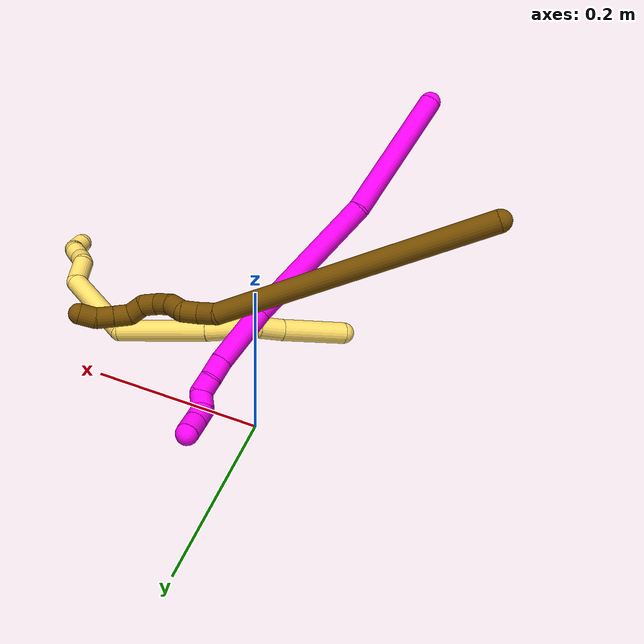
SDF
<sdf version="1.7">
 <world name="default">
  <model name="5">
   <static>0</static>
   <link name="5">
    <collision name="collision-cylinder-e_1_1_4">
     <pose>0.007945 -0.015925 -0.03377 2.70093 0.209661 0.878373</pose>
     <geometry><cylinder><radius>0.0125</radius><length>0.076345</length></cylinder></geometry>
     <surface>
      <friction><ode><mu>1.16</mu><mu2>1.16</mu2><slip1>0</slip1><slip2>0</slip2></ode></friction>
      <contact><ode><kp>1e+06</kp><kd>1</kd><max_vel>0</max_vel><min_depth>0.001</min_depth></ode></contact>
     </surface>
    </collision>
    <visual name="visual-cylinder-e_1_1_4">
     <pose>0.007945 -0.015925 -0.03377 2.70093 0.209661 0.878373</pose>
     <geometry><cylinder><radius>0.0125</radius><length>0.076345</length></cylinder></geometry>
     <material><ambient>1 0.858824 0.4 1</ambient></material>
    </visual>
    <collision name="collision-cylinder-e_2_4_5">
     <pose>0.018229 -0.037213 -0.080101 2.73811 0.169615 0.78785</pose>
     <geometry><cylinder><radius>0.0125</radius><length>0.027714</length></cylinder></geometry>
     <surface>
      <friction><ode><mu>1.16</mu><mu2>1.16</mu2><slip1>0</slip1><slip2>0</slip2></ode></friction>
      <contact><ode><kp>1e+06</kp><kd>1</kd><max_vel>0</max_vel><min_depth>0.001</min_depth></ode></contact>
     </surface>
    </collision>
    <visual name="visual-cylinder-e_2_4_5">
     <pose>0.018229 -0.037213 -0.080101 2.73811 0.169615 0.78785</pose>
     <geometry><cylinder><radius>0.0125</radius><length>0.027714</length></cylinder></geometry>
     <material><ambient>1 0.858824 0.4 1</ambient></material>
    </visual>
    <collision name="collision-cylinder-e_3_5_6">
     <pose>0.041767 -0.046639 -0.115727 2.96722 0.735672 2.69552</pose>
     <geometry><cylinder><radius>0.0125</radius><length>0.063179</length></cylinder></geometry>
     <surface>
      <friction><ode><mu>1.16</mu><mu2>1.16</mu2><slip1>0</slip1><slip2>0</slip2></ode></friction>
      <contact><ode><kp>1e+06</kp><kd>1</kd><max_vel>0</max_vel><min_depth>0.001</min_depth></ode></contact>
     </surface>
    </collision>
    <visual name="visual-cylinder-e_3_5_6">
     <pose>0.041767 -0.046639 -0.115727 2.96722 0.735672 2.69552</pose>
     <geometry><cylinder><radius>0.0125</radius><length>0.063179</length></cylinder></geometry>
     <material><ambient>1 0.858824 0.4 1</ambient></material>
    </visual>
    <collision name="collision-cylinder-e_4_6_7">
     <pose>0.098607 -0.05566 -0.181071 3.02485 0.697034 2.82266</pose>
     <geometry><cylinder><radius>0.0125</radius><length>0.111038</length></cylinder></geometry>
     <surface>
      <friction><ode><mu>1.16</mu><mu2>1.16</mu2><slip1>0</slip1><slip2>0</slip2></ode></friction>
      <contact><ode><kp>1e+06</kp><kd>1</kd><max_vel>0</max_vel><min_depth>0.001</min_depth></ode></contact>
     </surface>
    </collision>
    <visual name="visual-cylinder-e_4_6_7">
     <pose>0.098607 -0.05566 -0.181071 3.02485 0.697034 2.82266</pose>
     <geometry><cylinder><radius>0.0125</radius><length>0.111038</length></cylinder></geometry>
     <material><ambient>1 0.858824 0.4 1</ambient></material>
    </visual>
    <collision name="collision-cylinder-e_5_7_8">
     <pose>0.152386 -0.030889 -0.260731 -2.4697 0.362952 -0.967674</pose>
     <geometry><cylinder><radius>0.0125</radius><length>0.102181</length></cylinder></geometry>
     <surface>
      <friction><ode><mu>1.16</mu><mu2>1.16</mu2><slip1>0</slip1><slip2>0</slip2></ode></friction>
      <contact><ode><kp>1e+06</kp><kd>1</kd><max_vel>0</max_vel><min_depth>0.001</min_depth></ode></contact>
     </surface>
    </collision>
    <visual name="visual-cylinder-e_5_7_8">
     <pose>0.152386 -0.030889 -0.260731 -2.4697 0.362952 -0.967674</pose>
     <geometry><cylinder><radius>0.0125</radius><length>0.102181</length></cylinder></geometry>
     <material><ambient>1 0.858824 0.4 1</ambient></material>
    </visual>
    <collision name="collision-cylinder-e_6_8_9">
     <pose>0.172259 0.016657 -0.301109 -1.7375 0.095738 -0.113158</pose>
     <geometry><cylinder><radius>0.0125</radius><length>0.036298</length></cylinder></geometry>
     <surface>
      <friction><ode><mu>1.16</mu><mu2>1.16</mu2><slip1>0</slip1><slip2>0</slip2></ode></friction>
      <contact><ode><kp>1e+06</kp><kd>1</kd><max_vel>0</max_vel><min_depth>0.001</min_depth></ode></contact>
     </surface>
    </collision>
    <visual name="visual-cylinder-e_6_8_9">
     <pose>0.172259 0.016657 -0.301109 -1.7375 0.095738 -0.113158</pose>
     <geometry><cylinder><radius>0.0125</radius><length>0.036298</length></cylinder></geometry>
     <material><ambient>1 0.858824 0.4 1</ambient></material>
    </visual>
    <collision name="collision-cylinder-e_7_9_10">
     <pose>0.180962 0.042813 -0.30764 -1.97151 0.65564 -0.948658</pose>
     <geometry><cylinder><radius>0.0125</radius><length>0.022856</length></cylinder></geometry>
     <surface>
      <friction><ode><mu>1.16</mu><mu2>1.16</mu2><slip1>0</slip1><slip2>0</slip2></ode></friction>
      <contact><ode><kp>1e+06</kp><kd>1</kd><max_vel>0</max_vel><min_depth>0.001</min_depth></ode></contact>
     </surface>
    </collision>
    <visual name="visual-cylinder-e_7_9_10">
     <pose>0.180962 0.042813 -0.30764 -1.97151 0.65564 -0.948658</pose>
     <geometry><cylinder><radius>0.0125</radius><length>0.022856</length></cylinder></geometry>
     <material><ambient>1 0.858824 0.4 1</ambient></material>
    </visual>
    <collision name="collision-cylinder-e_8_10_11">
     <pose>0.19253 0.058041 -0.316994 -2.27246 0.471805 -0.955691</pose>
     <geometry><cylinder><radius>0.0125</radius><length>0.020246</length></cylinder></geometry>
     <surface>
      <friction><ode><mu>1.16</mu><mu2>1.16</mu2><slip1>0</slip1><slip2>0</slip2></ode></friction>
      <contact><ode><kp>1e+06</kp><kd>1</kd><max_vel>0</max_vel><min_depth>0.001</min_depth></ode></contact>
     </surface>
    </collision>
    <visual name="visual-cylinder-e_8_10_11">
     <pose>0.19253 0.058041 -0.316994 -2.27246 0.471805 -0.955691</pose>
     <geometry><cylinder><radius>0.0125</radius><length>0.020246</length></cylinder></geometry>
     <material><ambient>1 0.858824 0.4 1</ambient></material>
    </visual>
    <collision name="collision-cylinder-e_9_11_12">
     <pose>0.20431 0.071812 -0.324088 -1.75373 0.79805 -0.93815</pose>
     <geometry><cylinder><radius>0.0125</radius><length>0.020055</length></cylinder></geometry>
     <surface>
      <friction><ode><mu>1.16</mu><mu2>1.16</mu2><slip1>0</slip1><slip2>0</slip2></ode></friction>
      <contact><ode><kp>1e+06</kp><kd>1</kd><max_vel>0</max_vel><min_depth>0.001</min_depth></ode></contact>
     </surface>
    </collision>
    <visual name="visual-cylinder-e_9_11_12">
     <pose>0.20431 0.071812 -0.324088 -1.75373 0.79805 -0.93815</pose>
     <geometry><cylinder><radius>0.0125</radius><length>0.020055</length></cylinder></geometry>
     <material><ambient>1 0.858824 0.4 1</ambient></material>
    </visual>
    <collision name="collision-cylinder-e_10_12_2">
     <pose>0.212996 0.088397 -0.323239 -1.35542 0.15048 -0.121199</pose>
     <geometry><cylinder><radius>0.0125</radius><length>0.020089</length></cylinder></geometry>
     <surface>
      <friction><ode><mu>1.16</mu><mu2>1.16</mu2><slip1>0</slip1><slip2>0</slip2></ode></friction>
      <contact><ode><kp>1e+06</kp><kd>1</kd><max_vel>0</max_vel><min_depth>0.001</min_depth></ode></contact>
     </surface>
    </collision>
    <visual name="visual-cylinder-e_10_12_2">
     <pose>0.212996 0.088397 -0.323239 -1.35542 0.15048 -0.121199</pose>
     <geometry><cylinder><radius>0.0125</radius><length>0.020089</length></cylinder></geometry>
     <material><ambient>1 0.858824 0.4 1</ambient></material>
    </visual>
    <collision name="collision-sphere-2">
     <pose>0.214501 0.098098 -0.321117 0 -0 0</pose>
     <geometry><sphere><radius>0.0125</radius></sphere></geometry>
     <surface>
      <friction><ode><mu>1.16</mu><mu2>1.16</mu2><slip1>0</slip1><slip2>0</slip2></ode></friction>
      <contact><ode><kp>1e+06</kp><kd>1</kd><max_vel>0</max_vel><min_depth>0.001</min_depth></ode></contact>
     </surface>
    </collision>
    <visual name="visual-sphere-2">
     <pose>0.214501 0.098098 -0.321117 0 -0 0</pose>
     <geometry><sphere><radius>0.0125</radius></sphere></geometry>
     <material><ambient>1 0.858824 0.4 1</ambient></material>
    </visual>
    <collision name="collision-sphere-12">
     <pose>0.21149 0.078695 -0.325362 0 -0 0</pose>
     <geometry><sphere><radius>0.0125</radius></sphere></geometry>
     <surface>
      <friction><ode><mu>1.16</mu><mu2>1.16</mu2><slip1>0</slip1><slip2>0</slip2></ode></friction>
      <contact><ode><kp>1e+06</kp><kd>1</kd><max_vel>0</max_vel><min_depth>0.001</min_depth></ode></contact>
     </surface>
    </collision>
    <visual name="visual-sphere-12">
     <pose>0.21149 0.078695 -0.325362 0 -0 0</pose>
     <geometry><sphere><radius>0.0125</radius></sphere></geometry>
     <material><ambient>1 0.858824 0.4 1</ambient></material>
    </visual>
    <collision name="collision-sphere-11">
     <pose>0.19713 0.064928 -0.322815 0 -0 0</pose>
     <geometry><sphere><radius>0.0125</radius></sphere></geometry>
     <surface>
      <friction><ode><mu>1.16</mu><mu2>1.16</mu2><slip1>0</slip1><slip2>0</slip2></ode></friction>
      <contact><ode><kp>1e+06</kp><kd>1</kd><max_vel>0</max_vel><min_depth>0.001</min_depth></ode></contact>
     </surface>
    </collision>
    <visual name="visual-sphere-11">
     <pose>0.19713 0.064928 -0.322815 0 -0 0</pose>
     <geometry><sphere><radius>0.0125</radius></sphere></geometry>
     <material><ambient>1 0.858824 0.4 1</ambient></material>
    </visual>
    <collision name="collision-sphere-10">
     <pose>0.187929 0.051154 -0.311174 0 -0 0</pose>
     <geometry><sphere><radius>0.0125</radius></sphere></geometry>
     <surface>
      <friction><ode><mu>1.16</mu><mu2>1.16</mu2><slip1>0</slip1><slip2>0</slip2></ode></friction>
      <contact><ode><kp>1e+06</kp><kd>1</kd><max_vel>0</max_vel><min_depth>0.001</min_depth></ode></contact>
     </surface>
    </collision>
    <visual name="visual-sphere-10">
     <pose>0.187929 0.051154 -0.311174 0 -0 0</pose>
     <geometry><sphere><radius>0.0125</radius></sphere></geometry>
     <material><ambient>1 0.858824 0.4 1</ambient></material>
    </visual>
    <collision name="collision-sphere-9">
     <pose>0.173994 0.034472 -0.304107 0 -0 0</pose>
     <geometry><sphere><radius>0.0125</radius></sphere></geometry>
     <surface>
      <friction><ode><mu>1.16</mu><mu2>1.16</mu2><slip1>0</slip1><slip2>0</slip2></ode></friction>
      <contact><ode><kp>1e+06</kp><kd>1</kd><max_vel>0</max_vel><min_depth>0.001</min_depth></ode></contact>
     </surface>
    </collision>
    <visual name="visual-sphere-9">
     <pose>0.173994 0.034472 -0.304107 0 -0 0</pose>
     <geometry><sphere><radius>0.0125</radius></sphere></geometry>
     <material><ambient>1 0.858824 0.4 1</ambient></material>
    </visual>
    <collision name="collision-sphere-4">
     <pose>0.01589 -0.031851 -0.067539 0 -0 0</pose>
     <geometry><sphere><radius>0.0125</radius></sphere></geometry>
     <surface>
      <friction><ode><mu>1.16</mu><mu2>1.16</mu2><slip1>0</slip1><slip2>0</slip2></ode></friction>
      <contact><ode><kp>1e+06</kp><kd>1</kd><max_vel>0</max_vel><min_depth>0.001</min_depth></ode></contact>
     </surface>
    </collision>
    <visual name="visual-sphere-4">
     <pose>0.01589 -0.031851 -0.067539 0 -0 0</pose>
     <geometry><sphere><radius>0.0125</radius></sphere></geometry>
     <material><ambient>1 0.858824 0.4 1</ambient></material>
    </visual>
    <collision name="collision-sphere-1">
     <geometry><sphere><radius>0.0125</radius></sphere></geometry>
     <surface>
      <friction><ode><mu>1.16</mu><mu2>1.16</mu2><slip1>0</slip1><slip2>0</slip2></ode></friction>
      <contact><ode><kp>1e+06</kp><kd>1</kd><max_vel>0</max_vel><min_depth>0.001</min_depth></ode></contact>
     </surface>
    </collision>
    <visual name="visual-sphere-1">
     <geometry><sphere><radius>0.0125</radius></sphere></geometry>
     <material><ambient>1 0.858824 0.4 1</ambient></material>
    </visual>
    <collision name="collision-sphere-8">
     <pose>0.170524 -0.001158 -0.298112 0 -0 0</pose>
     <geometry><sphere><radius>0.0125</radius></sphere></geometry>
     <surface>
      <friction><ode><mu>1.16</mu><mu2>1.16</mu2><slip1>0</slip1><slip2>0</slip2></ode></friction>
      <contact><ode><kp>1e+06</kp><kd>1</kd><max_vel>0</max_vel><min_depth>0.001</min_depth></ode></contact>
     </surface>
    </collision>
    <visual name="visual-sphere-8">
     <pose>0.170524 -0.001158 -0.298112 0 -0 0</pose>
     <geometry><sphere><radius>0.0125</radius></sphere></geometry>
     <material><ambient>1 0.858824 0.4 1</ambient></material>
    </visual>
    <collision name="collision-sphere-5">
     <pose>0.020568 -0.042576 -0.092662 0 -0 0</pose>
     <geometry><sphere><radius>0.0125</radius></sphere></geometry>
     <surface>
      <friction><ode><mu>1.16</mu><mu2>1.16</mu2><slip1>0</slip1><slip2>0</slip2></ode></friction>
      <contact><ode><kp>1e+06</kp><kd>1</kd><max_vel>0</max_vel><min_depth>0.001</min_depth></ode></contact>
     </surface>
    </collision>
    <visual name="visual-sphere-5">
     <pose>0.020568 -0.042576 -0.092662 0 -0 0</pose>
     <geometry><sphere><radius>0.0125</radius></sphere></geometry>
     <material><ambient>1 0.858824 0.4 1</ambient></material>
    </visual>
    <collision name="collision-sphere-6">
     <pose>0.062966 -0.050702 -0.138792 0 -0 0</pose>
     <geometry><sphere><radius>0.0125</radius></sphere></geometry>
     <surface>
      <friction><ode><mu>1.16</mu><mu2>1.16</mu2><slip1>0</slip1><slip2>0</slip2></ode></friction>
      <contact><ode><kp>1e+06</kp><kd>1</kd><max_vel>0</max_vel><min_depth>0.001</min_depth></ode></contact>
     </surface>
    </collision>
    <visual name="visual-sphere-6">
     <pose>0.062966 -0.050702 -0.138792 0 -0 0</pose>
     <geometry><sphere><radius>0.0125</radius></sphere></geometry>
     <material><ambient>1 0.858824 0.4 1</ambient></material>
    </visual>
    <collision name="collision-sphere-7">
     <pose>0.134247 -0.060619 -0.22335 0 -0 0</pose>
     <geometry><sphere><radius>0.0125</radius></sphere></geometry>
     <surface>
      <friction><ode><mu>1.16</mu><mu2>1.16</mu2><slip1>0</slip1><slip2>0</slip2></ode></friction>
      <contact><ode><kp>1e+06</kp><kd>1</kd><max_vel>0</max_vel><min_depth>0.001</min_depth></ode></contact>
     </surface>
    </collision>
    <visual name="visual-sphere-7">
     <pose>0.134247 -0.060619 -0.22335 0 -0 0</pose>
     <geometry><sphere><radius>0.0125</radius></sphere></geometry>
     <material><ambient>1 0.858824 0.4 1</ambient></material>
    </visual>
    <inertial>
     <pose>0.105867 -0.017112 -0.192458 0 -0 0</pose>
     <mass>0.5</mass>
     <inertia><ixx>-7e-06</ixx><ixy>0</ixy><ixz>0</ixz><iyy>9.1e-05</iyy><iyz>0</iyz><izz>-0.000195</izz></inertia>
    </inertial>
   </link>
   <pose>-0.052076 -0.142217 0.038235 3.05528 1.0559 0.054289</pose>
  </model>
  <model name="10">
   <static>0</static>
   <link name="10">
    <collision name="collision-cylinder-e_1_1_4">
     <pose>0.021475 0.066764 -0.038999 -2.09947 0.27091 -0.466266</pose>
     <geometry><cylinder><radius>0.0125</radius><length>0.160493</length></cylinder></geometry>
     <surface>
      <friction><ode><mu>1.16</mu><mu2>1.16</mu2><slip1>0</slip1><slip2>0</slip2></ode></friction>
      <contact><ode><kp>1e+06</kp><kd>1</kd><max_vel>0</max_vel><min_depth>0.001</min_depth></ode></contact>
     </surface>
    </collision>
    <visual name="visual-cylinder-e_1_1_4">
     <pose>0.021475 0.066764 -0.038999 -2.09947 0.27091 -0.466266</pose>
     <geometry><cylinder><radius>0.0125</radius><length>0.160493</length></cylinder></geometry>
     <material><ambient>1 0 0.964706 1</ambient></material>
    </visual>
    <collision name="collision-cylinder-e_2_4_5">
     <pose>0.06341 0.208804 -0.099588 -1.85009 0.255566 -0.337772</pose>
     <geometry><cylinder><radius>0.0125</radius><length>0.16188</length></cylinder></geometry>
     <surface>
      <friction><ode><mu>1.16</mu><mu2>1.16</mu2><slip1>0</slip1><slip2>0</slip2></ode></friction>
      <contact><ode><kp>1e+06</kp><kd>1</kd><max_vel>0</max_vel><min_depth>0.001</min_depth></ode></contact>
     </surface>
    </collision>
    <visual name="visual-cylinder-e_2_4_5">
     <pose>0.06341 0.208804 -0.099588 -1.85009 0.255566 -0.337772</pose>
     <geometry><cylinder><radius>0.0125</radius><length>0.16188</length></cylinder></geometry>
     <material><ambient>1 0 0.964706 1</ambient></material>
    </visual>
    <collision name="collision-cylinder-e_3_5_6">
     <pose>0.088891 0.31451 -0.140754 -2.1425 0.137849 -0.251667</pose>
     <geometry><cylinder><radius>0.0125</radius><length>0.073059</length></cylinder></geometry>
     <surface>
      <friction><ode><mu>1.16</mu><mu2>1.16</mu2><slip1>0</slip1><slip2>0</slip2></ode></friction>
      <contact><ode><kp>1e+06</kp><kd>1</kd><max_vel>0</max_vel><min_depth>0.001</min_depth></ode></contact>
     </surface>
    </collision>
    <visual name="visual-cylinder-e_3_5_6">
     <pose>0.088891 0.31451 -0.140754 -2.1425 0.137849 -0.251667</pose>
     <geometry><cylinder><radius>0.0125</radius><length>0.073059</length></cylinder></geometry>
     <material><ambient>1 0 0.964706 1</ambient></material>
    </visual>
    <collision name="collision-cylinder-e_4_6_7">
     <pose>0.09609 0.353404 -0.167178 -2.25093 0.197522 -0.409359</pose>
     <geometry><cylinder><radius>0.0125</radius><length>0.022208</length></cylinder></geometry>
     <surface>
      <friction><ode><mu>1.16</mu><mu2>1.16</mu2><slip1>0</slip1><slip2>0</slip2></ode></friction>
      <contact><ode><kp>1e+06</kp><kd>1</kd><max_vel>0</max_vel><min_depth>0.001</min_depth></ode></contact>
     </surface>
    </collision>
    <visual name="visual-cylinder-e_4_6_7">
     <pose>0.09609 0.353404 -0.167178 -2.25093 0.197522 -0.409359</pose>
     <geometry><cylinder><radius>0.0125</radius><length>0.022208</length></cylinder></geometry>
     <material><ambient>1 0 0.964706 1</ambient></material>
    </visual>
    <collision name="collision-cylinder-e_5_7_8">
     <pose>0.10137 0.370239 -0.178615 -2.07236 0.314165 -0.522733</pose>
     <geometry><cylinder><radius>0.0125</radius><length>0.020074</length></cylinder></geometry>
     <surface>
      <friction><ode><mu>1.16</mu><mu2>1.16</mu2><slip1>0</slip1><slip2>0</slip2></ode></friction>
      <contact><ode><kp>1e+06</kp><kd>1</kd><max_vel>0</max_vel><min_depth>0.001</min_depth></ode></contact>
     </surface>
    </collision>
    <visual name="visual-cylinder-e_5_7_8">
     <pose>0.10137 0.370239 -0.178615 -2.07236 0.314165 -0.522733</pose>
     <geometry><cylinder><radius>0.0125</radius><length>0.020074</length></cylinder></geometry>
     <material><ambient>1 0 0.964706 1</ambient></material>
    </visual>
    <collision name="collision-cylinder-e_6_8_9">
     <pose>0.108282 0.380794 -0.19226 -2.9048 0.388307 -2.05349</pose>
     <geometry><cylinder><radius>0.0125</radius><length>0.020128</length></cylinder></geometry>
     <surface>
      <friction><ode><mu>1.16</mu><mu2>1.16</mu2><slip1>0</slip1><slip2>0</slip2></ode></friction>
      <contact><ode><kp>1e+06</kp><kd>1</kd><max_vel>0</max_vel><min_depth>0.001</min_depth></ode></contact>
     </surface>
    </collision>
    <visual name="visual-cylinder-e_6_8_9">
     <pose>0.108282 0.380794 -0.19226 -2.9048 0.388307 -2.05349</pose>
     <geometry><cylinder><radius>0.0125</radius><length>0.020128</length></cylinder></geometry>
     <material><ambient>1 0 0.964706 1</ambient></material>
    </visual>
    <collision name="collision-cylinder-e_7_9_10">
     <pose>0.109943 0.388108 -0.21038 -2.6268 -0.203511 0.740062</pose>
     <geometry><cylinder><radius>0.0125</radius><length>0.02127</length></cylinder></geometry>
     <surface>
      <friction><ode><mu>1.16</mu><mu2>1.16</mu2><slip1>0</slip1><slip2>0</slip2></ode></friction>
      <contact><ode><kp>1e+06</kp><kd>1</kd><max_vel>0</max_vel><min_depth>0.001</min_depth></ode></contact>
     </surface>
    </collision>
    <visual name="visual-cylinder-e_7_9_10">
     <pose>0.109943 0.388108 -0.21038 -2.6268 -0.203511 0.740062</pose>
     <geometry><cylinder><radius>0.0125</radius><length>0.02127</length></cylinder></geometry>
     <material><ambient>1 0 0.964706 1</ambient></material>
    </visual>
    <collision name="collision-cylinder-e_8_10_2">
     <pose>0.105374 0.398106 -0.228363 -2.64171 -0.233803 0.86233</pose>
     <geometry><cylinder><radius>0.0125</radius><length>0.020888</length></cylinder></geometry>
     <surface>
      <friction><ode><mu>1.16</mu><mu2>1.16</mu2><slip1>0</slip1><slip2>0</slip2></ode></friction>
      <contact><ode><kp>1e+06</kp><kd>1</kd><max_vel>0</max_vel><min_depth>0.001</min_depth></ode></contact>
     </surface>
    </collision>
    <visual name="visual-cylinder-e_8_10_2">
     <pose>0.105374 0.398106 -0.228363 -2.64171 -0.233803 0.86233</pose>
     <geometry><cylinder><radius>0.0125</radius><length>0.020888</length></cylinder></geometry>
     <material><ambient>1 0 0.964706 1</ambient></material>
    </visual>
    <collision name="collision-sphere-2">
     <pose>0.102955 0.402975 -0.237279 0 -0 0</pose>
     <geometry><sphere><radius>0.0125</radius></sphere></geometry>
     <surface>
      <friction><ode><mu>1.16</mu><mu2>1.16</mu2><slip1>0</slip1><slip2>0</slip2></ode></friction>
      <contact><ode><kp>1e+06</kp><kd>1</kd><max_vel>0</max_vel><min_depth>0.001</min_depth></ode></contact>
     </surface>
    </collision>
    <visual name="visual-sphere-2">
     <pose>0.102955 0.402975 -0.237279 0 -0 0</pose>
     <geometry><sphere><radius>0.0125</radius></sphere></geometry>
     <material><ambient>1 0 0.964706 1</ambient></material>
    </visual>
    <collision name="collision-sphere-10">
     <pose>0.107794 0.393236 -0.219446 0 -0 0</pose>
     <geometry><sphere><radius>0.0125</radius></sphere></geometry>
     <surface>
      <friction><ode><mu>1.16</mu><mu2>1.16</mu2><slip1>0</slip1><slip2>0</slip2></ode></friction>
      <contact><ode><kp>1e+06</kp><kd>1</kd><max_vel>0</max_vel><min_depth>0.001</min_depth></ode></contact>
     </surface>
    </collision>
    <visual name="visual-sphere-10">
     <pose>0.107794 0.393236 -0.219446 0 -0 0</pose>
     <geometry><sphere><radius>0.0125</radius></sphere></geometry>
     <material><ambient>1 0 0.964706 1</ambient></material>
    </visual>
    <collision name="collision-sphere-9">
     <pose>0.112093 0.382979 -0.201314 0 -0 0</pose>
     <geometry><sphere><radius>0.0125</radius></sphere></geometry>
     <surface>
      <friction><ode><mu>1.16</mu><mu2>1.16</mu2><slip1>0</slip1><slip2>0</slip2></ode></friction>
      <contact><ode><kp>1e+06</kp><kd>1</kd><max_vel>0</max_vel><min_depth>0.001</min_depth></ode></contact>
     </surface>
    </collision>
    <visual name="visual-sphere-9">
     <pose>0.112093 0.382979 -0.201314 0 -0 0</pose>
     <geometry><sphere><radius>0.0125</radius></sphere></geometry>
     <material><ambient>1 0 0.964706 1</ambient></material>
    </visual>
    <collision name="collision-sphere-4">
     <pose>0.042949 0.133527 -0.077999 0 -0 0</pose>
     <geometry><sphere><radius>0.0125</radius></sphere></geometry>
     <surface>
      <friction><ode><mu>1.16</mu><mu2>1.16</mu2><slip1>0</slip1><slip2>0</slip2></ode></friction>
      <contact><ode><kp>1e+06</kp><kd>1</kd><max_vel>0</max_vel><min_depth>0.001</min_depth></ode></contact>
     </surface>
    </collision>
    <visual name="visual-sphere-4">
     <pose>0.042949 0.133527 -0.077999 0 -0 0</pose>
     <geometry><sphere><radius>0.0125</radius></sphere></geometry>
     <material><ambient>1 0 0.964706 1</ambient></material>
    </visual>
    <collision name="collision-sphere-1">
     <geometry><sphere><radius>0.0125</radius></sphere></geometry>
     <surface>
      <friction><ode><mu>1.16</mu><mu2>1.16</mu2><slip1>0</slip1><slip2>0</slip2></ode></friction>
      <contact><ode><kp>1e+06</kp><kd>1</kd><max_vel>0</max_vel><min_depth>0.001</min_depth></ode></contact>
     </surface>
    </collision>
    <visual name="visual-sphere-1">
     <geometry><sphere><radius>0.0125</radius></sphere></geometry>
     <material><ambient>1 0 0.964706 1</ambient></material>
    </visual>
    <collision name="collision-sphere-8">
     <pose>0.104472 0.378609 -0.183205 0 -0 0</pose>
     <geometry><sphere><radius>0.0125</radius></sphere></geometry>
     <surface>
      <friction><ode><mu>1.16</mu><mu2>1.16</mu2><slip1>0</slip1><slip2>0</slip2></ode></friction>
      <contact><ode><kp>1e+06</kp><kd>1</kd><max_vel>0</max_vel><min_depth>0.001</min_depth></ode></contact>
     </surface>
    </collision>
    <visual name="visual-sphere-8">
     <pose>0.104472 0.378609 -0.183205 0 -0 0</pose>
     <geometry><sphere><radius>0.0125</radius></sphere></geometry>
     <material><ambient>1 0 0.964706 1</ambient></material>
    </visual>
    <collision name="collision-sphere-5">
     <pose>0.083872 0.284081 -0.121176 0 -0 0</pose>
     <geometry><sphere><radius>0.0125</radius></sphere></geometry>
     <surface>
      <friction><ode><mu>1.16</mu><mu2>1.16</mu2><slip1>0</slip1><slip2>0</slip2></ode></friction>
      <contact><ode><kp>1e+06</kp><kd>1</kd><max_vel>0</max_vel><min_depth>0.001</min_depth></ode></contact>
     </surface>
    </collision>
    <visual name="visual-sphere-5">
     <pose>0.083872 0.284081 -0.121176 0 -0 0</pose>
     <geometry><sphere><radius>0.0125</radius></sphere></geometry>
     <material><ambient>1 0 0.964706 1</ambient></material>
    </visual>
    <collision name="collision-sphere-6">
     <pose>0.093911 0.344939 -0.160331 0 -0 0</pose>
     <geometry><sphere><radius>0.0125</radius></sphere></geometry>
     <surface>
      <friction><ode><mu>1.16</mu><mu2>1.16</mu2><slip1>0</slip1><slip2>0</slip2></ode></friction>
      <contact><ode><kp>1e+06</kp><kd>1</kd><max_vel>0</max_vel><min_depth>0.001</min_depth></ode></contact>
     </surface>
    </collision>
    <visual name="visual-sphere-6">
     <pose>0.093911 0.344939 -0.160331 0 -0 0</pose>
     <geometry><sphere><radius>0.0125</radius></sphere></geometry>
     <material><ambient>1 0 0.964706 1</ambient></material>
    </visual>
    <collision name="collision-sphere-7">
     <pose>0.098269 0.361869 -0.174026 0 -0 0</pose>
     <geometry><sphere><radius>0.0125</radius></sphere></geometry>
     <surface>
      <friction><ode><mu>1.16</mu><mu2>1.16</mu2><slip1>0</slip1><slip2>0</slip2></ode></friction>
      <contact><ode><kp>1e+06</kp><kd>1</kd><max_vel>0</max_vel><min_depth>0.001</min_depth></ode></contact>
     </surface>
    </collision>
    <visual name="visual-sphere-7">
     <pose>0.098269 0.361869 -0.174026 0 -0 0</pose>
     <geometry><sphere><radius>0.0125</radius></sphere></geometry>
     <material><ambient>1 0 0.964706 1</ambient></material>
    </visual>
    <inertial>
     <pose>0.062187 0.21402 -0.106153 0 -0 0</pose>
     <mass>0.5</mass>
     <inertia>
      <ixx>0.0004</ixx>
      <ixy>0</ixy>
      <ixz>0</ixz>
      <iyy>-0.000451</iyy>
      <iyz>0</iyz>
      <izz>-0.000869</izz>
     </inertia>
    </inertial>
   </link>
   <pose>-0.07222 -0.35034 0.238167 -2.10019 1.16932 -3.01142</pose>
  </model>
  <model name="12">
   <static>0</static>
   <link name="12">
    <collision name="collision-cylinder-e_1_1_4">
     <pose>0.10924 0.028368 -0.111274 -2.89197 0.760443 -2.53325</pose>
     <geometry><cylinder><radius>0.0125</radius><length>0.316987</length></cylinder></geometry>
     <surface>
      <friction><ode><mu>1.16</mu><mu2>1.16</mu2><slip1>0</slip1><slip2>0</slip2></ode></friction>
      <contact><ode><kp>1e+06</kp><kd>1</kd><max_vel>0</max_vel><min_depth>0.001</min_depth></ode></contact>
     </surface>
    </collision>
    <visual name="visual-cylinder-e_1_1_4">
     <pose>0.10924 0.028368 -0.111274 -2.89197 0.760443 -2.53325</pose>
     <geometry><cylinder><radius>0.0125</radius><length>0.316987</length></cylinder></geometry>
     <material><ambient>0.466667 0.301961 0 1</ambient></material>
    </visual>
    <collision name="collision-cylinder-e_2_4_5">
     <pose>0.222478 0.060128 -0.23222 -2.80421 0.371853 -1.66999</pose>
     <geometry><cylinder><radius>0.0125</radius><length>0.022001</length></cylinder></geometry>
     <surface>
      <friction><ode><mu>1.16</mu><mu2>1.16</mu2><slip1>0</slip1><slip2>0</slip2></ode></friction>
      <contact><ode><kp>1e+06</kp><kd>1</kd><max_vel>0</max_vel><min_depth>0.001</min_depth></ode></contact>
     </surface>
    </collision>
    <visual name="visual-cylinder-e_2_4_5">
     <pose>0.222478 0.060128 -0.23222 -2.80421 0.371853 -1.66999</pose>
     <geometry><cylinder><radius>0.0125</radius><length>0.022001</length></cylinder></geometry>
     <material><ambient>0.466667 0.301961 0 1</ambient></material>
    </visual>
    <collision name="collision-cylinder-e_3_5_6">
     <pose>0.230455 0.063119 -0.251292 3.09883 0.400112 2.93144</pose>
     <geometry><cylinder><radius>0.0125</radius><length>0.020435</length></cylinder></geometry>
     <surface>
      <friction><ode><mu>1.16</mu><mu2>1.16</mu2><slip1>0</slip1><slip2>0</slip2></ode></friction>
      <contact><ode><kp>1e+06</kp><kd>1</kd><max_vel>0</max_vel><min_depth>0.001</min_depth></ode></contact>
     </surface>
    </collision>
    <visual name="visual-cylinder-e_3_5_6">
     <pose>0.230455 0.063119 -0.251292 3.09883 0.400112 2.93144</pose>
     <geometry><cylinder><radius>0.0125</radius><length>0.020435</length></cylinder></geometry>
     <material><ambient>0.466667 0.301961 0 1</ambient></material>
    </visual>
    <collision name="collision-cylinder-e_4_6_7">
     <pose>0.234001 0.067103 -0.269847 -2.69465 -0.042707 0.187392</pose>
     <geometry><cylinder><radius>0.0125</radius><length>0.020318</length></cylinder></geometry>
     <surface>
      <friction><ode><mu>1.16</mu><mu2>1.16</mu2><slip1>0</slip1><slip2>0</slip2></ode></friction>
      <contact><ode><kp>1e+06</kp><kd>1</kd><max_vel>0</max_vel><min_depth>0.001</min_depth></ode></contact>
     </surface>
    </collision>
    <visual name="visual-cylinder-e_4_6_7">
     <pose>0.234001 0.067103 -0.269847 -2.69465 -0.042707 0.187392</pose>
     <geometry><cylinder><radius>0.0125</radius><length>0.020318</length></cylinder></geometry>
     <material><ambient>0.466667 0.301961 0 1</ambient></material>
    </visual>
    <collision name="collision-cylinder-e_5_7_8">
     <pose>0.236607 0.076209 -0.287323 -2.62585 0.307625 -1.06285</pose>
     <geometry><cylinder><radius>0.0125</radius><length>0.020077</length></cylinder></geometry>
     <surface>
      <friction><ode><mu>1.16</mu><mu2>1.16</mu2><slip1>0</slip1><slip2>0</slip2></ode></friction>
      <contact><ode><kp>1e+06</kp><kd>1</kd><max_vel>0</max_vel><min_depth>0.001</min_depth></ode></contact>
     </surface>
    </collision>
    <visual name="visual-cylinder-e_5_7_8">
     <pose>0.236607 0.076209 -0.287323 -2.62585 0.307625 -1.06285</pose>
     <geometry><cylinder><radius>0.0125</radius><length>0.020077</length></cylinder></geometry>
     <material><ambient>0.466667 0.301961 0 1</ambient></material>
    </visual>
    <collision name="collision-cylinder-e_6_8_9">
     <pose>0.244675 0.083012 -0.304083 -2.89931 0.524502 -2.29004</pose>
     <geometry><cylinder><radius>0.0125</radius><length>0.020083</length></cylinder></geometry>
     <surface>
      <friction><ode><mu>1.16</mu><mu2>1.16</mu2><slip1>0</slip1><slip2>0</slip2></ode></friction>
      <contact><ode><kp>1e+06</kp><kd>1</kd><max_vel>0</max_vel><min_depth>0.001</min_depth></ode></contact>
     </surface>
    </collision>
    <visual name="visual-cylinder-e_6_8_9">
     <pose>0.244675 0.083012 -0.304083 -2.89931 0.524502 -2.29004</pose>
     <geometry><cylinder><radius>0.0125</radius><length>0.020083</length></cylinder></geometry>
     <material><ambient>0.466667 0.301961 0 1</ambient></material>
    </visual>
    <collision name="collision-cylinder-e_7_9_10">
     <pose>0.258179 0.087468 -0.317315 -2.68247 1.00789 -2.33994</pose>
     <geometry><cylinder><radius>0.0125</radius><length>0.020045</length></cylinder></geometry>
     <surface>
      <friction><ode><mu>1.16</mu><mu2>1.16</mu2><slip1>0</slip1><slip2>0</slip2></ode></friction>
      <contact><ode><kp>1e+06</kp><kd>1</kd><max_vel>0</max_vel><min_depth>0.001</min_depth></ode></contact>
     </surface>
    </collision>
    <visual name="visual-cylinder-e_7_9_10">
     <pose>0.258179 0.087468 -0.317315 -2.68247 1.00789 -2.33994</pose>
     <geometry><cylinder><radius>0.0125</radius><length>0.020045</length></cylinder></geometry>
     <material><ambient>0.466667 0.301961 0 1</ambient></material>
    </visual>
    <collision name="collision-cylinder-e_8_10_11">
     <pose>0.272687 0.08677 -0.329505 2.74838 0.645634 2.06749</pose>
     <geometry><cylinder><radius>0.0125</radius><length>0.020047</length></cylinder></geometry>
     <surface>
      <friction><ode><mu>1.16</mu><mu2>1.16</mu2><slip1>0</slip1><slip2>0</slip2></ode></friction>
      <contact><ode><kp>1e+06</kp><kd>1</kd><max_vel>0</max_vel><min_depth>0.001</min_depth></ode></contact>
     </surface>
    </collision>
    <visual name="visual-cylinder-e_8_10_11">
     <pose>0.272687 0.08677 -0.329505 2.74838 0.645634 2.06749</pose>
     <geometry><cylinder><radius>0.0125</radius><length>0.020047</length></cylinder></geometry>
     <material><ambient>0.466667 0.301961 0 1</ambient></material>
    </visual>
    <collision name="collision-cylinder-e_9_11_12">
     <pose>0.284604 0.080176 -0.344177 2.69039 0.6292 1.91304</pose>
     <geometry><cylinder><radius>0.0125</radius><length>0.020004</length></cylinder></geometry>
     <surface>
      <friction><ode><mu>1.16</mu><mu2>1.16</mu2><slip1>0</slip1><slip2>0</slip2></ode></friction>
      <contact><ode><kp>1e+06</kp><kd>1</kd><max_vel>0</max_vel><min_depth>0.001</min_depth></ode></contact>
     </surface>
    </collision>
    <visual name="visual-cylinder-e_9_11_12">
     <pose>0.284604 0.080176 -0.344177 2.69039 0.6292 1.91304</pose>
     <geometry><cylinder><radius>0.0125</radius><length>0.020004</length></cylinder></geometry>
     <material><ambient>0.466667 0.301961 0 1</ambient></material>
    </visual>
    <collision name="collision-cylinder-e_10_12_2">
     <pose>0.293152 0.07276 -0.360276 2.72625 0.269338 1.1429</pose>
     <geometry><cylinder><radius>0.0125</radius><length>0.020003</length></cylinder></geometry>
     <surface>
      <friction><ode><mu>1.16</mu><mu2>1.16</mu2><slip1>0</slip1><slip2>0</slip2></ode></friction>
      <contact><ode><kp>1e+06</kp><kd>1</kd><max_vel>0</max_vel><min_depth>0.001</min_depth></ode></contact>
     </surface>
    </collision>
    <visual name="visual-cylinder-e_10_12_2">
     <pose>0.293152 0.07276 -0.360276 2.72625 0.269338 1.1429</pose>
     <geometry><cylinder><radius>0.0125</radius><length>0.020003</length></cylinder></geometry>
     <material><ambient>0.466667 0.301961 0 1</ambient></material>
    </visual>
    <collision name="collision-sphere-2">
     <pose>0.295813 0.06887 -0.369097 0 -0 0</pose>
     <geometry><sphere><radius>0.0125</radius></sphere></geometry>
     <surface>
      <friction><ode><mu>1.16</mu><mu2>1.16</mu2><slip1>0</slip1><slip2>0</slip2></ode></friction>
      <contact><ode><kp>1e+06</kp><kd>1</kd><max_vel>0</max_vel><min_depth>0.001</min_depth></ode></contact>
     </surface>
    </collision>
    <visual name="visual-sphere-2">
     <pose>0.295813 0.06887 -0.369097 0 -0 0</pose>
     <geometry><sphere><radius>0.0125</radius></sphere></geometry>
     <material><ambient>0.466667 0.301961 0 1</ambient></material>
    </visual>
    <collision name="collision-sphere-12">
     <pose>0.29049 0.07665 -0.351455 0 -0 0</pose>
     <geometry><sphere><radius>0.0125</radius></sphere></geometry>
     <surface>
      <friction><ode><mu>1.16</mu><mu2>1.16</mu2><slip1>0</slip1><slip2>0</slip2></ode></friction>
      <contact><ode><kp>1e+06</kp><kd>1</kd><max_vel>0</max_vel><min_depth>0.001</min_depth></ode></contact>
     </surface>
    </collision>
    <visual name="visual-sphere-12">
     <pose>0.29049 0.07665 -0.351455 0 -0 0</pose>
     <geometry><sphere><radius>0.0125</radius></sphere></geometry>
     <material><ambient>0.466667 0.301961 0 1</ambient></material>
    </visual>
    <collision name="collision-sphere-11">
     <pose>0.278718 0.083703 -0.3369 0 -0 0</pose>
     <geometry><sphere><radius>0.0125</radius></sphere></geometry>
     <surface>
      <friction><ode><mu>1.16</mu><mu2>1.16</mu2><slip1>0</slip1><slip2>0</slip2></ode></friction>
      <contact><ode><kp>1e+06</kp><kd>1</kd><max_vel>0</max_vel><min_depth>0.001</min_depth></ode></contact>
     </surface>
    </collision>
    <visual name="visual-sphere-11">
     <pose>0.278718 0.083703 -0.3369 0 -0 0</pose>
     <geometry><sphere><radius>0.0125</radius></sphere></geometry>
     <material><ambient>0.466667 0.301961 0 1</ambient></material>
    </visual>
    <collision name="collision-sphere-10">
     <pose>0.266655 0.089838 -0.32211 0 -0 0</pose>
     <geometry><sphere><radius>0.0125</radius></sphere></geometry>
     <surface>
      <friction><ode><mu>1.16</mu><mu2>1.16</mu2><slip1>0</slip1><slip2>0</slip2></ode></friction>
      <contact><ode><kp>1e+06</kp><kd>1</kd><max_vel>0</max_vel><min_depth>0.001</min_depth></ode></contact>
     </surface>
    </collision>
    <visual name="visual-sphere-10">
     <pose>0.266655 0.089838 -0.32211 0 -0 0</pose>
     <geometry><sphere><radius>0.0125</radius></sphere></geometry>
     <material><ambient>0.466667 0.301961 0 1</ambient></material>
    </visual>
    <collision name="collision-sphere-9">
     <pose>0.249703 0.085097 -0.312521 0 -0 0</pose>
     <geometry><sphere><radius>0.0125</radius></sphere></geometry>
     <surface>
      <friction><ode><mu>1.16</mu><mu2>1.16</mu2><slip1>0</slip1><slip2>0</slip2></ode></friction>
      <contact><ode><kp>1e+06</kp><kd>1</kd><max_vel>0</max_vel><min_depth>0.001</min_depth></ode></contact>
     </surface>
    </collision>
    <visual name="visual-sphere-9">
     <pose>0.249703 0.085097 -0.312521 0 -0 0</pose>
     <geometry><sphere><radius>0.0125</radius></sphere></geometry>
     <material><ambient>0.466667 0.301961 0 1</ambient></material>
    </visual>
    <collision name="collision-sphere-4">
     <pose>0.218481 0.056736 -0.222548 0 -0 0</pose>
     <geometry><sphere><radius>0.0125</radius></sphere></geometry>
     <surface>
      <friction><ode><mu>1.16</mu><mu2>1.16</mu2><slip1>0</slip1><slip2>0</slip2></ode></friction>
      <contact><ode><kp>1e+06</kp><kd>1</kd><max_vel>0</max_vel><min_depth>0.001</min_depth></ode></contact>
     </surface>
    </collision>
    <visual name="visual-sphere-4">
     <pose>0.218481 0.056736 -0.222548 0 -0 0</pose>
     <geometry><sphere><radius>0.0125</radius></sphere></geometry>
     <material><ambient>0.466667 0.301961 0 1</ambient></material>
    </visual>
    <collision name="collision-sphere-1">
     <geometry><sphere><radius>0.0125</radius></sphere></geometry>
     <surface>
      <friction><ode><mu>1.16</mu><mu2>1.16</mu2><slip1>0</slip1><slip2>0</slip2></ode></friction>
      <contact><ode><kp>1e+06</kp><kd>1</kd><max_vel>0</max_vel><min_depth>0.001</min_depth></ode></contact>
     </surface>
    </collision>
    <visual name="visual-sphere-1">
     <geometry><sphere><radius>0.0125</radius></sphere></geometry>
     <material><ambient>0.466667 0.301961 0 1</ambient></material>
    </visual>
    <collision name="collision-sphere-8">
     <pose>0.239646 0.080927 -0.295645 0 -0 0</pose>
     <geometry><sphere><radius>0.0125</radius></sphere></geometry>
     <surface>
      <friction><ode><mu>1.16</mu><mu2>1.16</mu2><slip1>0</slip1><slip2>0</slip2></ode></friction>
      <contact><ode><kp>1e+06</kp><kd>1</kd><max_vel>0</max_vel><min_depth>0.001</min_depth></ode></contact>
     </surface>
    </collision>
    <visual name="visual-sphere-8">
     <pose>0.239646 0.080927 -0.295645 0 -0 0</pose>
     <geometry><sphere><radius>0.0125</radius></sphere></geometry>
     <material><ambient>0.466667 0.301961 0 1</ambient></material>
    </visual>
    <collision name="collision-sphere-5">
     <pose>0.226475 0.063521 -0.241891 0 -0 0</pose>
     <geometry><sphere><radius>0.0125</radius></sphere></geometry>
     <surface>
      <friction><ode><mu>1.16</mu><mu2>1.16</mu2><slip1>0</slip1><slip2>0</slip2></ode></friction>
      <contact><ode><kp>1e+06</kp><kd>1</kd><max_vel>0</max_vel><min_depth>0.001</min_depth></ode></contact>
     </surface>
    </collision>
    <visual name="visual-sphere-5">
     <pose>0.226475 0.063521 -0.241891 0 -0 0</pose>
     <geometry><sphere><radius>0.0125</radius></sphere></geometry>
     <material><ambient>0.466667 0.301961 0 1</ambient></material>
    </visual>
    <collision name="collision-sphere-6">
     <pose>0.234435 0.062716 -0.260694 0 -0 0</pose>
     <geometry><sphere><radius>0.0125</radius></sphere></geometry>
     <surface>
      <friction><ode><mu>1.16</mu><mu2>1.16</mu2><slip1>0</slip1><slip2>0</slip2></ode></friction>
      <contact><ode><kp>1e+06</kp><kd>1</kd><max_vel>0</max_vel><min_depth>0.001</min_depth></ode></contact>
     </surface>
    </collision>
    <visual name="visual-sphere-6">
     <pose>0.234435 0.062716 -0.260694 0 -0 0</pose>
     <geometry><sphere><radius>0.0125</radius></sphere></geometry>
     <material><ambient>0.466667 0.301961 0 1</ambient></material>
    </visual>
    <collision name="collision-sphere-7">
     <pose>0.233567 0.07149 -0.279 0 -0 0</pose>
     <geometry><sphere><radius>0.0125</radius></sphere></geometry>
     <surface>
      <friction><ode><mu>1.16</mu><mu2>1.16</mu2><slip1>0</slip1><slip2>0</slip2></ode></friction>
      <contact><ode><kp>1e+06</kp><kd>1</kd><max_vel>0</max_vel><min_depth>0.001</min_depth></ode></contact>
     </surface>
    </collision>
    <visual name="visual-sphere-7">
     <pose>0.233567 0.07149 -0.279 0 -0 0</pose>
     <geometry><sphere><radius>0.0125</radius></sphere></geometry>
     <material><ambient>0.466667 0.301961 0 1</ambient></material>
    </visual>
    <inertial>
     <pose>0.161699 0.045435 -0.179865 0 -0 0</pose>
     <mass>0.5</mass>
     <inertia>
      <ixx>-0.002668</ixx>
      <ixy>0</ixy>
      <ixz>0</ixz>
      <iyy>0.001284</iyy>
      <iyz>0</iyz>
      <izz>-0.002351</izz>
     </inertia>
    </inertial>
   </link>
   <pose>-0.192938 -0.17714 0.220951 -1.79943 0.601012 1.32749</pose>
  </model>
 </world>
</sdf>
